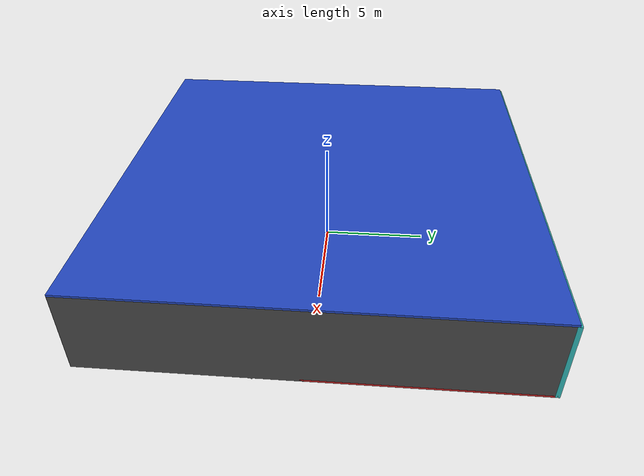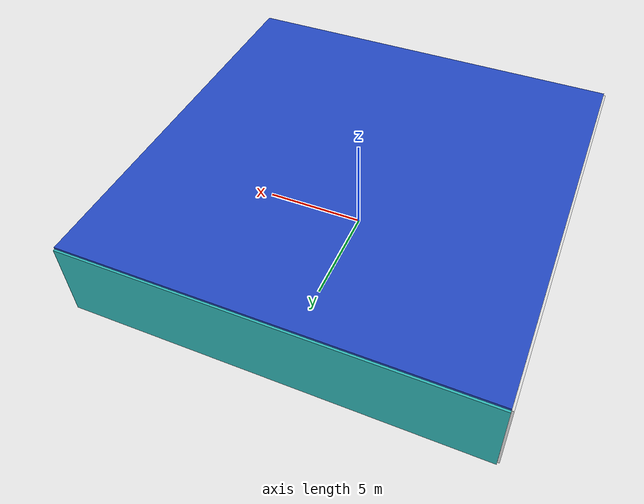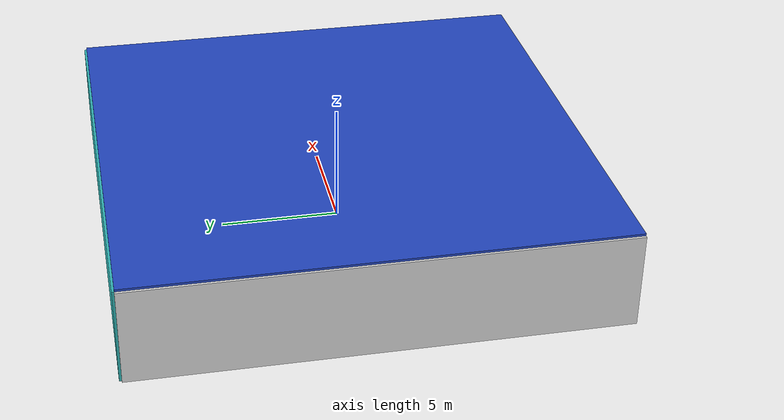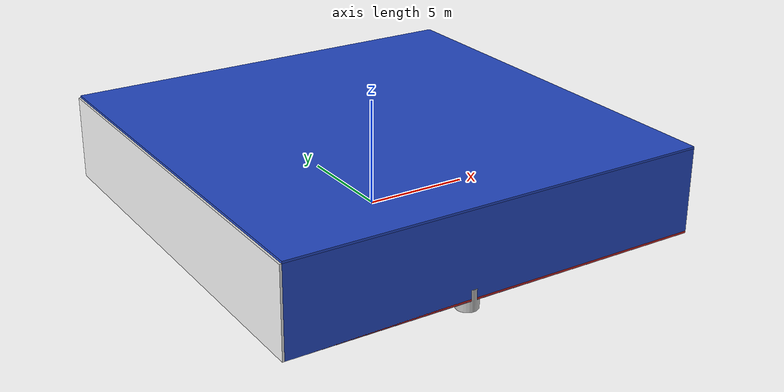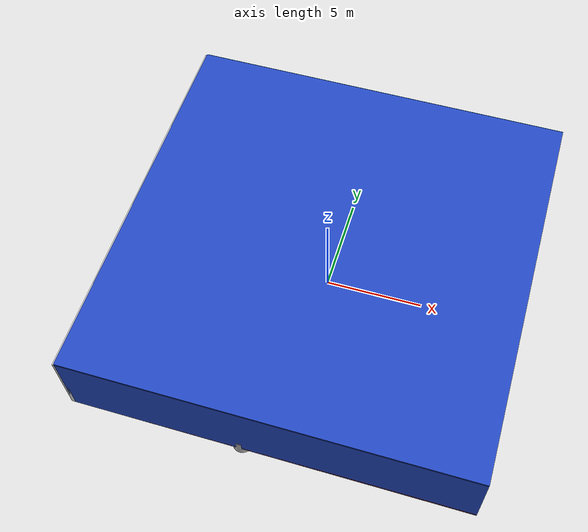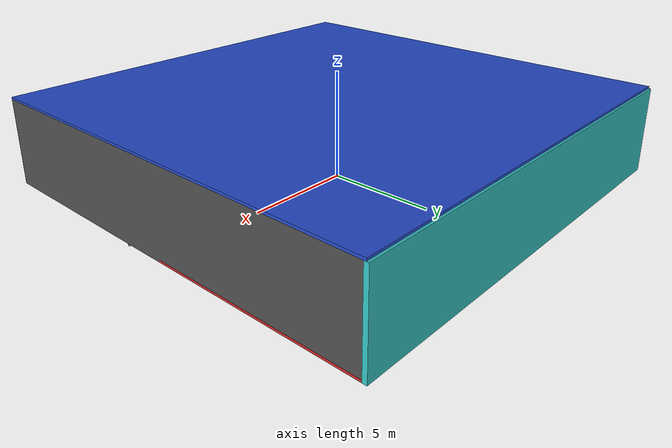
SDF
<sdf version="1.4">
 <world name="default">
  <physics type="ode">
   <max_step_size>0.001</max_step_size>
   <real_time_factor>1</real_time_factor>
   <real_time_update_rate>1000</real_time_update_rate>
   <gravity>0 0 -9.8</gravity>
  </physics>
  <scene><ambient>0.4 0.4 0.4 1</ambient><background>0.7 0.7 0.7 1</background><shadows>1</shadows></scene>
  <model name="Surrounding">
   <static>1</static>
   <link name="Ceiling">
    <collision name="Ceiling_Collision"><geometry><box><size>20 20 0.1</size></box></geometry></collision>
    <visual name="Ceiling_Visual">
     <geometry><box><size>20 20 0.1</size></box></geometry>
     <material>
      <script><uri>file://media/materials/scripts/gazebo.material</uri><name>Gazebo/BlueLaser</name></script>
     </material>
    </visual>
    <pose>0 0 4.05 0 0 0</pose>
   </link>
   <link name="Wall_South">
    <collision name="Wall_South_Collision">
     <geometry><box><size>20 0 4</size></box></geometry>
     <pose>0 0 2 0 -0 0</pose>
    </collision>
    <visual name="Wall_South_Visual">
     <pose>0 0 2 0 -0 0</pose>
     <geometry><box><size>20 0 4</size></box></geometry>
     <material>
      <script><uri>file://media/materials/scripts/gazebo.material</uri><name>Gazebo/BlueGlow</name></script>
     </material>
    </visual>
    <velocity_decay><linear>0</linear><angular>0</angular></velocity_decay>
    <pose>0 -10 0 0 -0 0</pose>
   </link>
   <link name="Wall_East">
    <collision name="Wall_21_Collision">
     <geometry><box><size>20 0 4</size></box></geometry>
     <pose>0 0 2 0 -0 0</pose>
    </collision>
    <visual name="Wall_21_Visual">
     <pose>0 0 2 0 -0 0</pose>
     <geometry><box><size>20 0 4</size></box></geometry>
     <material>
      <script><uri>file://media/materials/scripts/gazebo.material</uri><name>Gazebo/DarkGrey</name></script>
     </material>
    </visual>
    <velocity_decay><linear>0</linear><angular>0</angular></velocity_decay>
    <pose>10 0 0 0 -0 1.5708</pose>
   </link>
   <link name="Wall_North">
    <collision name="Wall_22_Collision">
     <geometry><box><size>20 0.2 4</size></box></geometry>
     <pose>0 0 2 0 -0 0</pose>
    </collision>
    <visual name="Wall_22_Visual">
     <pose>0 0 2 0 -0 0</pose>
     <geometry><box><size>20 0.2 4</size></box></geometry>
     <material>
      <script><uri>file://media/materials/scripts/gazebo.material</uri><name>Gazebo/Turquoise</name></script>
     </material>
    </visual>
    <velocity_decay><linear>0</linear><angular>0</angular></velocity_decay>
    <pose>0 10 0 0 -0 0</pose>
   </link>
   <link name="Wall_West">
    <collision name="Wall_23_Collision">
     <geometry><box><size>20 0.2 4</size></box></geometry>
     <pose>0 0 2 0 -0 0</pose>
    </collision>
    <visual name="Wall_23_Visual">
     <pose>0 0 2 0 -0 0</pose>
     <geometry><box><size>20 0.2 4</size></box></geometry>
     <material>
      <script><uri>file://media/materials/scripts/gazebo.material</uri><name>Gazebo/WhiteGlow</name></script>
     </material>
    </visual>
    <velocity_decay><linear>0</linear><angular>0</angular></velocity_decay>
    <pose>-10 0 0 0 0 -1.5708</pose>
   </link>
   <link name="Ground_link">
    <collision name="collision">
     <pose>0 0 .05 0 -0 0</pose>
     <geometry><box><size>20 20 0.1</size></box></geometry>
    </collision>
    <visual name="visual">
     <pose>0 0 .05 0 -0 0</pose>
     <geometry><box><size>20 20 0.1</size></box></geometry>
     <material>
      <script><uri>file://media/materials/scripts/gazebo.material</uri><name>Gazebo/RedGlow</name></script>
     </material>
    </visual>
   </link>
   <static>1</static>
  </model>
  <spherical_coordinates>
   <surface_model>EARTH_WGS84</surface_model>
   <latitude_deg>0</latitude_deg>
   <longitude_deg>0</longitude_deg>
   <elevation>0</elevation>
   <heading_deg>0</heading_deg>
  </spherical_coordinates>
  <light name="lightball_0" type="diffuse">
   <diffuse>0.8 0.8 0.8 1</diffuse>
   <specular>0.2 0.2 0.2 1</specular>
   <attenuation>
    <range>100</range>
    <constant>0.7</constant>
    <linear>0.01</linear>
    <quadratic>0.001</quadratic>
   </attenuation>
   <direction>-0.5 0.1 -0.9</direction>
   <pose>-9.15665924614 -7.09917045798 2.73599216616 0 0 0</pose>
  </light>
  <light name="lightball_1" type="diffuse">
   <diffuse>0.8 0.8 0.8 1</diffuse>
   <specular>0.2 0.2 0.2 1</specular>
   <attenuation>
    <range>100</range>
    <constant>0.7</constant>
    <linear>0.01</linear>
    <quadratic>0.001</quadratic>
   </attenuation>
   <direction>-0.5 0.1 -0.9</direction>
   <pose>4.23370199179 1.71750122114 1.38564424527 0 0 0</pose>
  </light>
  <light name="lightball_2" type="diffuse">
   <diffuse>0.8 0.8 0.8 1</diffuse>
   <specular>0.2 0.2 0.2 1</specular>
   <attenuation>
    <range>100</range>
    <constant>0.7</constant>
    <linear>0.01</linear>
    <quadratic>0.001</quadratic>
   </attenuation>
   <direction>-0.5 0.1 -0.9</direction>
   <pose>6.81106553302 -7.999719273 1.21778123075 0 0 0</pose>
  </light>
  <light name="lightball_3" type="diffuse">
   <diffuse>0.8 0.8 0.8 1</diffuse>
   <specular>0.2 0.2 0.2 1</specular>
   <attenuation>
    <range>100</range>
    <constant>0.7</constant>
    <linear>0.01</linear>
    <quadratic>0.001</quadratic>
   </attenuation>
   <direction>-0.5 0.1 -0.9</direction>
   <pose>0.713759140099 4.07518423985 0.906780645517 0 0 0</pose>
  </light>
  <light name="lightball_4" type="diffuse">
   <diffuse>0.8 0.8 0.8 1</diffuse>
   <specular>0.2 0.2 0.2 1</specular>
   <attenuation>
    <range>100</range>
    <constant>0.7</constant>
    <linear>0.01</linear>
    <quadratic>0.001</quadratic>
   </attenuation>
   <direction>-0.5 0.1 -0.9</direction>
   <pose>9.4493760816 0.587285750919 1.06384745071 0 0 0</pose>
  </light>
  <light name="lightball_5" type="diffuse">
   <diffuse>0.8 0.8 0.8 1</diffuse>
   <specular>0.2 0.2 0.2 1</specular>
   <attenuation>
    <range>100</range>
    <constant>0.7</constant>
    <linear>0.01</linear>
    <quadratic>0.001</quadratic>
   </attenuation>
   <direction>-0.5 0.1 -0.9</direction>
   <pose>7.21600652878 -4.6233557762 0.519462898345 0 0 0</pose>
  </light>
  <light name="lightball_6" type="diffuse">
   <diffuse>0.8 0.8 0.8 1</diffuse>
   <specular>0.2 0.2 0.2 1</specular>
   <attenuation>
    <range>100</range>
    <constant>0.7</constant>
    <linear>0.01</linear>
    <quadratic>0.001</quadratic>
   </attenuation>
   <direction>-0.5 0.1 -0.9</direction>
   <pose>9.54367262302 -1.95406909542 3.62395497548 0 0 0</pose>
  </light>
  <light name="lightball_7" type="diffuse">
   <diffuse>0.8 0.8 0.8 1</diffuse>
   <specular>0.2 0.2 0.2 1</specular>
   <attenuation>
    <range>100</range>
    <constant>0.7</constant>
    <linear>0.01</linear>
    <quadratic>0.001</quadratic>
   </attenuation>
   <direction>-0.5 0.1 -0.9</direction>
   <pose>4.60300576823 -9.06766813459 2.56229147086 0 0 0</pose>
  </light>
  <light name="lightball_8" type="diffuse">
   <diffuse>0.8 0.8 0.8 1</diffuse>
   <specular>0.2 0.2 0.2 1</specular>
   <attenuation>
    <range>100</range>
    <constant>0.7</constant>
    <linear>0.01</linear>
    <quadratic>0.001</quadratic>
   </attenuation>
   <direction>-0.5 0.1 -0.9</direction>
   <pose>6.55960492093 -2.60094394856 3.28355013679 0 0 0</pose>
  </light>
  <light name="lightball_9" type="diffuse">
   <diffuse>0.8 0.8 0.8 1</diffuse>
   <specular>0.2 0.2 0.2 1</specular>
   <attenuation>
    <range>100</range>
    <constant>0.7</constant>
    <linear>0.01</linear>
    <quadratic>0.001</quadratic>
   </attenuation>
   <direction>-0.5 0.1 -0.9</direction>
   <pose>-0.0407007069842 -7.72012771403 3.72778061615 0 0 0</pose>
  </light>
  <light name="lightball_10" type="diffuse">
   <diffuse>0.8 0.8 0.8 1</diffuse>
   <specular>0.2 0.2 0.2 1</specular>
   <attenuation>
    <range>100</range>
    <constant>0.7</constant>
    <linear>0.01</linear>
    <quadratic>0.001</quadratic>
   </attenuation>
   <direction>-0.5 0.1 -0.9</direction>
   <pose>-1.70197256681 -0.186368700818 2.04504859603 0 0 0</pose>
  </light>
  <light name="lightball_11" type="diffuse">
   <diffuse>0.8 0.8 0.8 1</diffuse>
   <specular>0.2 0.2 0.2 1</specular>
   <attenuation>
    <range>100</range>
    <constant>0.7</constant>
    <linear>0.01</linear>
    <quadratic>0.001</quadratic>
   </attenuation>
   <direction>-0.5 0.1 -0.9</direction>
   <pose>6.79888137783 -1.04395138903 3.45230386343 0 0 0</pose>
  </light>
  <light name="lightball_12" type="diffuse">
   <diffuse>0.8 0.8 0.8 1</diffuse>
   <specular>0.2 0.2 0.2 1</specular>
   <attenuation>
    <range>100</range>
    <constant>0.7</constant>
    <linear>0.01</linear>
    <quadratic>0.001</quadratic>
   </attenuation>
   <direction>-0.5 0.1 -0.9</direction>
   <pose>-3.20720310265 -4.01067111158 0.638342465631 0 0 0</pose>
  </light>
  <light name="lightball_13" type="diffuse">
   <diffuse>0.8 0.8 0.8 1</diffuse>
   <specular>0.2 0.2 0.2 1</specular>
   <attenuation>
    <range>100</range>
    <constant>0.7</constant>
    <linear>0.01</linear>
    <quadratic>0.001</quadratic>
   </attenuation>
   <direction>-0.5 0.1 -0.9</direction>
   <pose>-0.0352015839352 0.615683404118 3.61498454806 0 0 0</pose>
  </light>
  <include>
   <uri>model://construction_cone</uri>
   <pose>-8.22392344309 1.47810370592 0 0 0 1.959544863</pose>
  </include>
  <include>
   <uri>model://construction_cone</uri>
   <pose>-7.05751841181 5.13069835382 0 0 0 2.62682150483</pose>
  </include>
  <include>
   <uri>model://textured_shapes</uri>
   <pose>-0.85948800993 -8.15501649385 0 0 0 2.71932405455</pose>
  </include>
  <include>
   <uri>model://robocup_3Dsim_goal</uri>
   <pose>-1.55161544091 1.00105261501 0 0 0 0.893327495664</pose>
  </include>
  <include>
   <uri>model://textured_shapes</uri>
   <pose>7.64457411902 -1.94097026176 0 0 0 1.09857271811</pose>
  </include>
 </world>
</sdf>

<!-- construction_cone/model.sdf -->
<sdf version="1.5">
  <model name="Construction Cone">
    <link name="link">
      <collision name="collision">
        <geometry>
          <mesh>
            <scale>10 10 10</scale>
            <uri>file://isr-testbed/construction_cone/meshes/construction_cone.dae</uri>
          </mesh>
        </geometry>
      </collision>
      <visual name="visual">
        <geometry>
          <mesh>
            <scale>10 10 10</scale>
            <uri>file://isr-testbed/construction_cone/meshes/construction_cone.dae</uri>
          </mesh>
        </geometry>
      </visual>
    </link>
  </model>
</sdf>

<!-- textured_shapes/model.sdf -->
<sdf version="1.6">
  <model name="textured_shapes">
    <pose>0 0 0.5 0 0 0</pose>
    <link name="box">
      <pose>0 -1.5 0 0 0 0</pose>
      <collision name="collision">
        <geometry>
          <box>
            <size>1 1 1</size>
          </box>
        </geometry>
      </collision>
      <visual name="visual">
        <geometry>
          <box>
            <size>1 1 1</size>
          </box>
        </geometry>
        <material>
          <script>
            <uri>model://../model_source/models/textured_shapes/materials/scripts</uri>
            <uri>model://../model_source/models/textured_shapes/materials/textures</uri>
            <name>TexturedShape/Squares</name>
          </script>
        </material>
      </visual>
    </link>
    <link name="sphere">
      <collision name="collision">
        <geometry>
          <sphere>
            <radius>0.5</radius>
          </sphere>
        </geometry>
      </collision>
      <visual name="visual">
        <geometry>
          <sphere>
            <radius>0.5</radius>
          </sphere>
        </geometry>
        <material>
          <script>
            <uri>model://../model_source/models/textured_shapes/materials/scripts</uri>
            <uri>model://../model_source/models/textured_shapes/materials/textures</uri>
            <name>TexturedShape/Squares</name>
          </script>
        </material>
      </visual>
    </link>
    <link name="cylinder">
      <pose>0 1.5 0 0 0 0</pose>
      <collision name="collision">
        <geometry>
          <cylinder>
            <radius>0.5</radius>
            <length>1</length>
          </cylinder>
        </geometry>
      </collision>
      <visual name="visual">
        <geometry>
          <cylinder>
            <radius>0.5</radius>
            <length>1</length>
          </cylinder>
        </geometry>
        <material>
          <script>
            <uri>model://../model_source/models/textured_shapes/materials/scripts</uri>
            <uri>model://../model_source/models/textured_shapes/materials/textures</uri>
            <name>TexturedShape/Squares</name>
          </script>
        </material>
      </visual>
    </link>
  </model>
</sdf>

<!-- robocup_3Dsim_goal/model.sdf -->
<sdf version="1.5">
  <model name="robocup_3d_goal">
    <static>true</static>
    <link name="left_post">
      <pose>0 1.05 0.45 0 0 0</pose>
      <collision name="collision">
        <geometry>
          <cylinder>
            <radius>0.05</radius>
            <length>0.9</length>
          </cylinder>
        </geometry>
      </collision>
      <visual name="visual">
        <geometry>
          <cylinder>
            <radius>0.05</radius>
            <length>0.9</length>
          </cylinder>
        </geometry>
        <material>
          <script>
            <uri>file://media/materials/scripts/gazebo.material</uri>
            <name>Gazebo/ZincYellow</name>
          </script>
        </material>
      </visual>
    </link>
    <link name="left_support_horiz_lower">
      <pose>0.30 1.05 0.01 0 0 0</pose>
      <collision name="collision">
        <geometry>
          <box>
            <size>0.50 0.02 0.02</size>
          </box>
        </geometry>
      </collision>
      <visual name="visual">
        <geometry>
          <box>
            <size>0.50 0.02 0.02</size>
          </box>
        </geometry>
        <material>
          <script>
            <uri>file://media/materials/scripts/gazebo.material</uri>
            <name>Gazebo/White</name>
          </script>
        </material>
      </visual>
    </link>
    <link name="left_support_horiz_upper">
      <pose>0.30 1.05 0.79 0 0 0</pose>
      <collision name="collision">
        <geometry>
          <box>
            <size>0.50 0.02 0.02</size>
          </box>
        </geometry>
      </collision>
      <visual name="visual">
        <geometry>
          <box>
            <size>0.50 0.02 0.02</size>
          </box>
        </geometry>
        <material>
          <script>
            <uri>file://media/materials/scripts/gazebo.material</uri>
            <name>Gazebo/White</name>
          </script>
        </material>
      </visual>
    </link>
    <link name="left_support_vertical">
      <pose>0.56 1.05 0.4 0 1.5708 0</pose>
      <collision name="collision">
        <geometry>
          <box>
            <size>0.80 0.02 0.02</size>
          </box>
        </geometry>
      </collision>
      <visual name="visual">
        <geometry>
          <box>
            <size>0.80 0.02 0.02</size>
          </box>
        </geometry>
        <material>
          <script>
            <uri>file://media/materials/scripts/gazebo.material</uri>
            <name>Gazebo/White</name>
          </script>
        </material>
      </visual>
    </link>
    <link name="right_support_horiz_lower">
      <pose>0.30 -1.05 0.01 0 0 0</pose>
      <collision name="collision">
        <geometry>
          <box>
            <size>0.50 0.02 0.02</size>
          </box>
        </geometry>
      </collision>
      <visual name="visual">
        <geometry>
          <box>
            <size>0.50 0.02 0.02</size>
          </box>
        </geometry>
        <material>
          <script>
            <uri>file://media/materials/scripts/gazebo.material</uri>
            <name>Gazebo/White</name>
          </script>
        </material>
      </visual>
    </link>
    <link name="right_support_horiz_upper">
      <pose>0.30 -1.05 0.79 0 0 0</pose>
      <collision name="collision">
        <geometry>
          <box>
            <size>0.50 0.02 0.02</size>
          </box>
        </geometry>
      </collision>
      <visual name="visual">
        <geometry>
          <box>
            <size>0.50 0.02 0.02</size>
          </box>
        </geometry>
        <material>
          <script>
            <uri>file://media/materials/scripts/gazebo.material</uri>
            <name>Gazebo/White</name>
          </script>
        </material>
      </visual>
    </link>
    <link name="right_support_vertical">
      <pose>0.56 -1.05 0.4 0 1.5708 0</pose>
      <collision name="collision">
        <geometry>
          <box>
            <size>0.80 0.02 0.02</size>
          </box>
        </geometry>
      </collision>
      <visual name="visual">
        <geometry>
          <box>
            <size>0.80 0.02 0.02</size>
          </box>
        </geometry>
        <material>
          <script>
            <uri>file://media/materials/scripts/gazebo.material</uri>
            <name>Gazebo/White</name>
          </script>
        </material>
      </visual>
    </link>
    <link name="center_support_horiz_lower">
      <pose>0.56 0 0.01 0 1.5708 0</pose>
      <collision name="collision">
        <geometry>
          <box>
            <size>0.02 2.08 0.02</size>
          </box>
        </geometry>
      </collision>
      <visual name="visual">
        <geometry>
          <box>
            <size>0.02 2.08 0.02</size>
          </box>
        </geometry>
        <material>
          <script>
            <uri>file://media/materials/scripts/gazebo.material</uri>
            <name>Gazebo/White</name>
          </script>
        </material>
      </visual>
    </link>
    <link name="center_support_horiz_upper">
      <pose>0.56 0 0.79 0 1.5708 0</pose>
      <collision name="collision">
        <geometry>
          <box>
            <size>0.02 2.08 0.02</size>
          </box>
        </geometry>
      </collision>
      <visual name="visual">
        <geometry>
          <box>
            <size>0.02 2.08 0.02</size>
          </box>
        </geometry>
        <material>
          <script>
            <uri>file://media/materials/scripts/gazebo.material</uri>
            <name>Gazebo/White</name>
          </script>
        </material>
      </visual>
    </link>
    <link name="right_post">
      <pose>0 -1.05 0.45 0 0 0</pose>
      <collision name="collision">
        <geometry>
          <cylinder>
            <radius>0.05</radius>
            <length>0.9</length>
          </cylinder>
        </geometry>
      </collision>
      <visual name="visual">
        <geometry>
          <cylinder>
            <radius>0.05</radius>
            <length>0.9</length>
          </cylinder>
        </geometry>
        <material>
          <script>
            <uri>file://media/materials/scripts/gazebo.material</uri>
            <name>Gazebo/ZincYellow</name>
          </script>
        </material>
      </visual>
    </link>
    <link name="crossbar">
      <pose>0 0 0.85 1.57 1.57 0</pose>
      <collision name="collision">
        <geometry>
          <cylinder>
            <radius>0.05</radius>
            <length>2.0</length>
          </cylinder>
        </geometry>
      </collision>
      <visual name="visual">
        <geometry>
          <cylinder>
            <radius>0.05</radius>
            <length>2.0</length>
          </cylinder>
        </geometry>
        <material>
          <script>
            <uri>file://media/materials/scripts/gazebo.material</uri>
            <name>Gazebo/ZincYellow</name>
          </script>
        </material>
      </visual>
    </link>
    <link name="center_net">
      <pose>0.56 0 0.40 0 0 0</pose>
      <collision name="collision">
        <geometry>
          <box>
            <size>0.01 2.1 0.80</size>
          </box>
        </geometry>
      </collision>
      <visual name="visual">
        <geometry>
          <box>
            <size>0.01 2.1 0.80</size>
          </box>
        </geometry>
        <material>
          <script>
            <uri>model://../model_source/models/robocup09_spl_field/materials/scripts/</uri>
            <uri>model://../model_source/models/robocup09_spl_field/materials/textures/</uri>
            <name>RoboCup/Net</name>
          </script>
        </material>
      </visual>
    </link>
    <link name="left_net">
      <pose>0.30 1.05 0.40 0 0 0</pose>
      <collision name="collision">
        <geometry>
          <box>
            <size>0.50 0.01 0.76</size>
          </box>
        </geometry>
      </collision>
      <visual name="visual">
        <geometry>
          <box>
            <size>0.50 0.01 0.76</size>
          </box>
        </geometry>
        <material>
          <script>
            <uri>model://../model_source/models/robocup09_spl_field/materials/scripts/</uri>
            <uri>model://../model_source/models/robocup09_spl_field/materials/textures/</uri>
            <name>RoboCup/Net</name>
          </script>
        </material>
      </visual>
    </link>
    <link name="right_net">
      <pose>0.30 -1.05 0.40 0 0 0</pose>
      <collision name="collision">
        <geometry>
          <box>
            <size>0.50 0.01 0.76</size>
          </box>
        </geometry>
      </collision>
      <visual name="visual">
        <geometry>
          <box>
            <size>0.50 0.01 0.76</size>
          </box>
        </geometry>
        <material>
          <script>
            <uri>model://../model_source/models/robocup09_spl_field/materials/scripts/</uri>
            <uri>model://../model_source/models/robocup09_spl_field/materials/textures/</uri>
            <name>RoboCup/Net</name>
          </script>
        </material>
      </visual>
    </link>
  </model>
</sdf>
